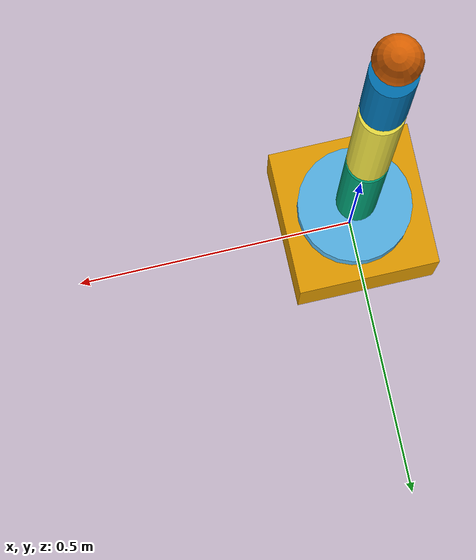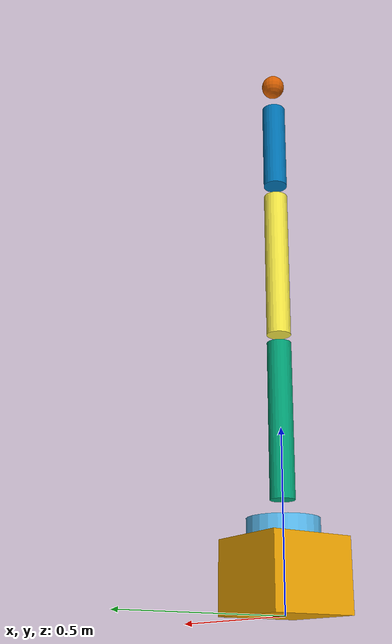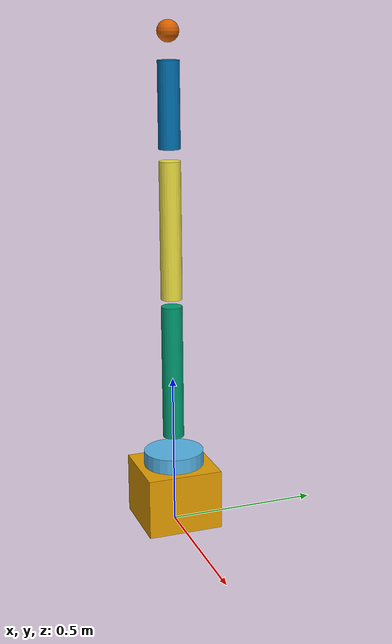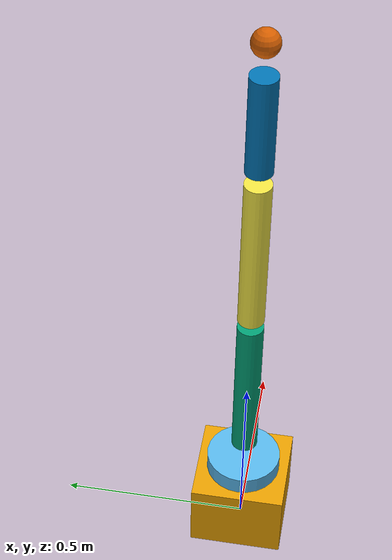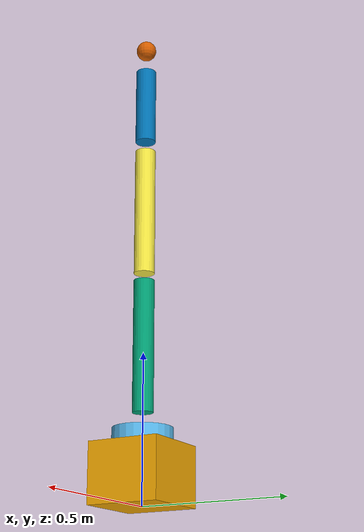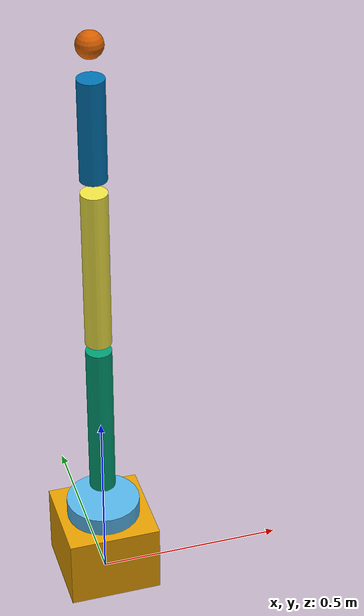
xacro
<?xml version="1.0" ?>

<robot name="mrm" xmlns:xacro="http://www.ros.org/wiki/xacro">
    <link name="base_link">
        <visual>
            <origin rpy="0 0 0" xyz="0 0 0.1"/>
            <geometry>
                <box size="0.25 0.25 0.2"/>
            </geometry>
        </visual>
    </link>
    <joint name="joint1" type="revolute">
        <axis xyz="0 0 1" />
        <limit effort="1000.0" lower="-3.14" upper="3.14" velocity="0.5" />
        <origin rpy="0 0 0" xyz="0 0 0"/>
        <parent link="base_link"/>
        <child link="link1"/>
    </joint>
    <link name="link1">
        <visual>
            <origin rpy="0 0 0" xyz="0 0 0.225"/>
            <geometry>
                <cylinder radius="0.1" length="0.05"/>
            </geometry>
        </visual>
    </link>
    <joint name="joint2" type="revolute">
        <axis xyz="0 1 0" />
        <limit effort="1000.0" lower="-1.57" upper="1.57" velocity="0.5" />
        <origin rpy="0 0 0" xyz="0 0 0.275"/>
        <parent link="link1"/>
        <child link="link2"/>
    </joint>
    <link name="link2">
        <visual>
            <origin rpy="0 0 0" xyz="0 0 0.25"/>
            <geometry>
                <cylinder radius="0.035" length="0.45"/>
            </geometry>
        </visual>
    </link>
    <joint name="joint3" type="revolute">
        <axis xyz="0 1 0" />
        <limit effort="1000.0" lower="-1.57" upper="1.57" velocity="0.5" />
        <origin rpy="0 0 0" xyz="0 0 0.475"/>
        <parent link="link2"/>
        <child link="link3"/>
    </joint>
    <link name="link3">
        <visual>
            <origin rpy="0 0 0" xyz="0 0 0.25"/>
            <geometry>
                <cylinder radius="0.035" length="0.45"/>
            </geometry>
        </visual>
    </link>
    <joint name="joint4" type="revolute">
        <axis xyz="0 1 0" />
        <limit effort="1000.0" lower="0" upper="1.57" velocity="0.5" />
        <origin rpy="0 0 0" xyz="0 0 0.475"/>
        <parent link="link3"/>
        <child link="link4"/>
    </joint>
    <link name="link4">
        <visual>
            <origin rpy="0 0 0" xyz="0 0 0.175"/>
            <geometry>
                <cylinder radius="0.035" length="0.275"/>
            </geometry>
        </visual>
    </link>
    <joint name="end" type="fixed">
        <origin rpy="0 0 0" xyz="0 0 0.4"/>
        <parent link="link4"/>
        <child link="final_link"/>
    </joint>
    <link name="final_link">
        <visual>
            <origin rpy="0 0 0" xyz="0 0 0"/>
            <geometry>
                <sphere radius="0.035"/>
            </geometry>
        </visual>
    </link>

</robot>
